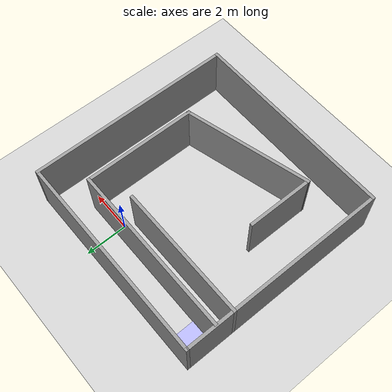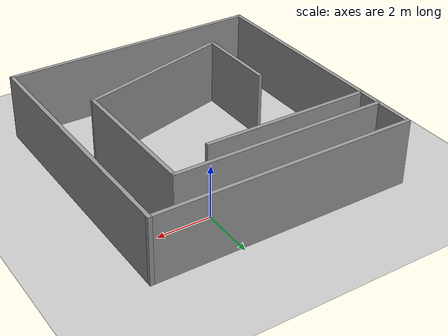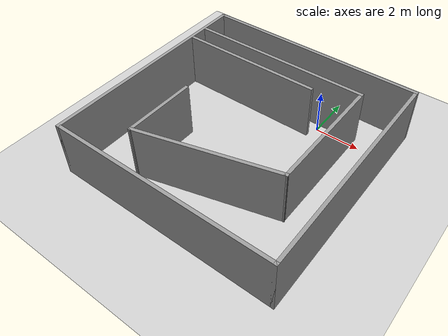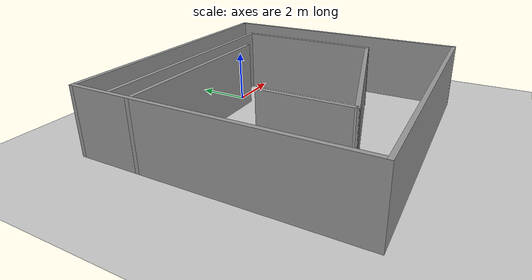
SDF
<sdf version="1.6">
 <world name="default">
  <light name="sun" type="directional">
   <pose>0 0 10 0 -0 0</pose>
   <diffuse>0.8 0.8 0.8 1</diffuse>
   <specular>0.1 0.1 0.1 1</specular>
   <attenuation>
    <range>1000</range>
    <constant>0.9</constant>
    <linear>0.01</linear>
    <quadratic>0.001</quadratic>
   </attenuation>
   <direction>-0.5 0.5 -1</direction>
  </light>
  <model name="ground_plane">
   <static>1</static>
   <link name="link">
    <collision name="collision">
     <geometry><plane><normal>0 0 1</normal><size>100 100</size></plane></geometry>
     <surface><friction><ode><mu>100</mu><mu2>50</mu2></ode></friction></surface>
    </collision>
    <visual name="visual">
     <cast_shadows>0</cast_shadows>
     <geometry><plane><normal>0 0 1</normal><size>100 100</size></plane></geometry>
     <material>
      <script><uri>file://media/materials/scripts/gazebo.material</uri><name>Gazebo/Grey</name></script>
     </material>
    </visual>
   </link>
  </model>
  <gravity>0 0 -9.8</gravity>
  <magnetic_field>6e-06 2.3e-05 -4.2e-05</magnetic_field>
  <atmosphere type="adiabatic"/>
  <physics name="default_physics" default="0" type="ode">
   <max_step_size>0.001</max_step_size>
   <real_time_factor>1</real_time_factor>
   <real_time_update_rate>1000</real_time_update_rate>
  </physics>
  <scene><ambient>0.4 0.4 0.4 1</ambient><background>0.7 0.7 0.7 1</background><shadows>1</shadows></scene>
  <spherical_coordinates>
   <surface_model>EARTH_WGS84</surface_model>
   <latitude_deg>0</latitude_deg>
   <longitude_deg>0</longitude_deg>
   <elevation>0</elevation>
   <heading_deg>0</heading_deg>
  </spherical_coordinates>
  <model name="newmaze">
   <pose>-1.66611 -3.11716 0 0 -0 0</pose>
   <link name="Wall_0">
    <collision name="Wall_0_Collision">
     <geometry><box><size>10 0.15 2.5</size></box></geometry>
     <pose>0 0 1.25 0 -0 0</pose>
    </collision>
    <visual name="Wall_0_Visual">
     <pose>0 0 1.25 0 -0 0</pose>
     <geometry><box><size>10 0.15 2.5</size></box></geometry>
     <material>
      <script><uri>file://media/materials/scripts/gazebo.material</uri><name>Gazebo/Grey</name></script>
      <ambient>1 1 1 1</ambient>
     </material>
    </visual>
    <pose>-4.925 0 0 0 0 -1.5708</pose>
   </link>
   <link name="Wall_1">
    <collision name="Wall_1_Collision">
     <geometry><box><size>10 0.15 2.5</size></box></geometry>
     <pose>0 0 1.25 0 -0 0</pose>
    </collision>
    <visual name="Wall_1_Visual">
     <pose>0 0 1.25 0 -0 0</pose>
     <geometry><box><size>10 0.15 2.5</size></box></geometry>
     <material>
      <script><uri>file://media/materials/scripts/gazebo.material</uri><name>Gazebo/Grey</name></script>
      <ambient>1 1 1 1</ambient>
     </material>
    </visual>
    <pose>0 -4.925 0 0 -0 0</pose>
   </link>
   <link name="Wall_10">
    <collision name="Wall_10_Collision">
     <geometry><box><size>6.5 0.15 2.5</size></box></geometry>
     <pose>0 0 1.25 0 -0 0</pose>
    </collision>
    <visual name="Wall_10_Visual">
     <pose>0 0 1.25 0 -0 0</pose>
     <geometry><box><size>6.5 0.15 2.5</size></box></geometry>
     <material>
      <script><uri>file://media/materials/scripts/gazebo.material</uri><name>Gazebo/Grey</name></script>
      <ambient>1 1 1 1</ambient>
     </material>
    </visual>
    <pose>-1.75 2.61194 0 0 -0 0</pose>
   </link>
   <link name="Wall_2">
    <collision name="Wall_2_Collision">
     <geometry><box><size>10 0.15 2.5</size></box></geometry>
     <pose>0 0 1.25 0 -0 0</pose>
    </collision>
    <visual name="Wall_2_Visual">
     <pose>0 0 1.25 0 -0 0</pose>
     <geometry><box><size>10 0.15 2.5</size></box></geometry>
     <material>
      <script><uri>file://media/materials/scripts/gazebo.material</uri><name>Gazebo/Grey</name></script>
      <ambient>1 1 1 1</ambient>
     </material>
    </visual>
    <pose>4.925 0 0 0 -0 1.5708</pose>
   </link>
   <link name="Wall_3">
    <collision name="Wall_3_Collision">
     <geometry><box><size>10 0.15 2.5</size></box></geometry>
     <pose>0 0 1.25 0 -0 0</pose>
    </collision>
    <visual name="Wall_3_Visual">
     <pose>0 0 1.25 0 -0 0</pose>
     <geometry><box><size>10 0.15 2.5</size></box></geometry>
     <material>
      <script><uri>file://media/materials/scripts/gazebo.material</uri><name>Gazebo/Grey</name></script>
      <ambient>1 1 1 1</ambient>
     </material>
    </visual>
    <pose>0 4.925 0 0 -0 3.14159</pose>
   </link>
   <link name="Wall_5">
    <collision name="Wall_5_Collision">
     <geometry><box><size>8.25 0.15 2.5</size></box></geometry>
     <pose>0 0 1.25 0 -0 0</pose>
    </collision>
    <visual name="Wall_5_Visual">
     <pose>0 0 1.25 0 -0 0</pose>
     <geometry><box><size>8.25 0.15 2.5</size></box></geometry>
     <material>
      <script><uri>file://media/materials/scripts/gazebo.material</uri><name>Gazebo/Grey</name></script>
      <ambient>1 1 1 1</ambient>
     </material>
    </visual>
    <pose>-0.814659 3.49694 0 0 -0 0</pose>
   </link>
   <link name="Wall_6">
    <collision name="Wall_6_Collision">
     <geometry><box><size>5.5 0.15 2.5</size></box></geometry>
     <pose>0 0 1.25 0 -0 0</pose>
    </collision>
    <visual name="Wall_6_Visual">
     <pose>0 0 1.25 0 -0 0</pose>
     <geometry><box><size>5.5 0.15 2.5</size></box></geometry>
     <material>
      <script><uri>file://media/materials/scripts/gazebo.material</uri><name>Gazebo/Grey</name></script>
      <ambient>1 1 1 1</ambient>
     </material>
    </visual>
    <pose>3.23534 0.821937 0 0 0 -1.5708</pose>
   </link>
   <link name="Wall_7">
    <collision name="Wall_7_Collision">
     <geometry><box><size>6.25 0.15 2.5</size></box></geometry>
     <pose>0 0 1.25 0 -0 0</pose>
    </collision>
    <visual name="Wall_7_Visual">
     <pose>0 0 1.25 0 -0 0</pose>
     <geometry><box><size>6.25 0.15 2.5</size></box></geometry>
     <material>
      <script><uri>file://media/materials/scripts/gazebo.material</uri><name>Gazebo/Grey</name></script>
      <ambient>1 1 1 1</ambient>
     </material>
    </visual>
    <pose>0.289267 -2.64246 0 0 0 -2.87979</pose>
   </link>
   <link name="Wall_8">
    <collision name="Wall_8_Collision">
     <geometry><box><size>3.25 0.15 2.5</size></box></geometry>
     <pose>0 0 1.25 0 -0 0</pose>
    </collision>
    <visual name="Wall_8_Visual">
     <pose>0 0 1.25 0 -0 0</pose>
     <geometry><box><size>3.25 0.15 2.5</size></box></geometry>
     <material>
      <script><uri>file://media/materials/scripts/gazebo.material</uri><name>Gazebo/Grey</name></script>
      <ambient>1 1 1 1</ambient>
     </material>
    </visual>
    <pose>-2.65681 -1.88186 0 0 -0 1.5708</pose>
   </link>
   <static>1</static>
  </model>
  <model name="unit_box_0_0">
   <link name="link">
    <inertial>
     <mass>1</mass>
     <inertia>
      <ixx>0.166667</ixx>
      <ixy>0</ixy>
      <ixz>0</ixz>
      <iyy>0.166667</iyy>
      <iyz>0</iyz>
      <izz>0.166667</izz>
     </inertia>
    </inertial>
    <visual name="visual">
     <geometry><box><size>1 1 1</size></box></geometry>
     <material>
      <script><name>Gazebo/Grey</name><uri>file://media/materials/scripts/gazebo.material</uri></script>
      <ambient>0.3 0.3 1 1</ambient>
      <diffuse>0.7 0.7 1 1</diffuse>
      <specular>0.01 0.01 1 1</specular>
      <emissive>0 0 0 1</emissive>
      <shader type="vertex"><normal_map>__default__</normal_map></shader>
     </material>
    </visual>
    <collision name="collision">
     <geometry><box><size>1 1 1</size></box></geometry>
     <surface>
      <friction>
       <ode><mu>1</mu><mu2>1</mu2><fdir1>0 0 0</fdir1><slip1>0</slip1><slip2>0</slip2></ode>
       <torsional>
        <coefficient>1</coefficient>
        <patch_radius>0</patch_radius>
        <surface_radius>0</surface_radius>
        <use_patch_radius>1</use_patch_radius>
        <ode><slip>0</slip></ode>
       </torsional>
      </friction>
      <bounce><restitution_coefficient>0</restitution_coefficient><threshold>1e+06</threshold></bounce>
      <contact>
       <collide_without_contact>0</collide_without_contact>
       <collide_without_contact_bitmask>1</collide_without_contact_bitmask>
       <collide_bitmask>1</collide_bitmask>
       <ode>
        <soft_cfm>0</soft_cfm>
        <soft_erp>0.2</soft_erp>
        <kp>1e+13</kp>
        <kd>1</kd>
        <max_vel>0.01</max_vel>
        <min_depth>0</min_depth>
       </ode>
       <bullet>
        <split_impulse>1</split_impulse>
        <split_impulse_penetration_threshold>-0.01</split_impulse_penetration_threshold>
        <soft_cfm>0</soft_cfm>
        <soft_erp>0.2</soft_erp>
        <kp>1e+13</kp>
        <kd>1</kd>
       </bullet>
      </contact>
     </surface>
    </collision>
   </link>
   <static>0</static>
   <pose>-6.01609 1.14634 0.5 0 0 -5e-06</pose>
  </model>
 </world>
</sdf>
